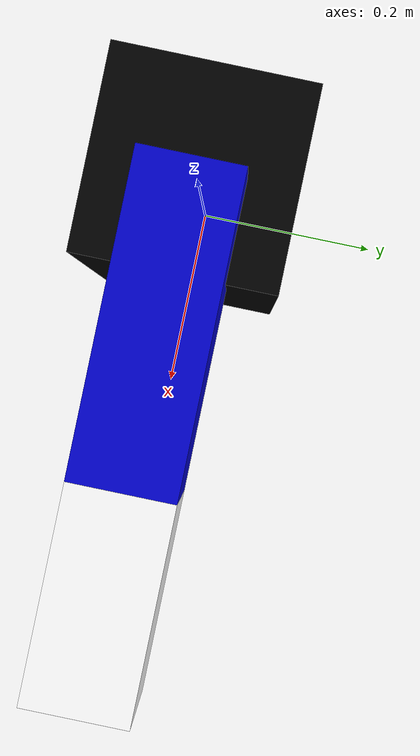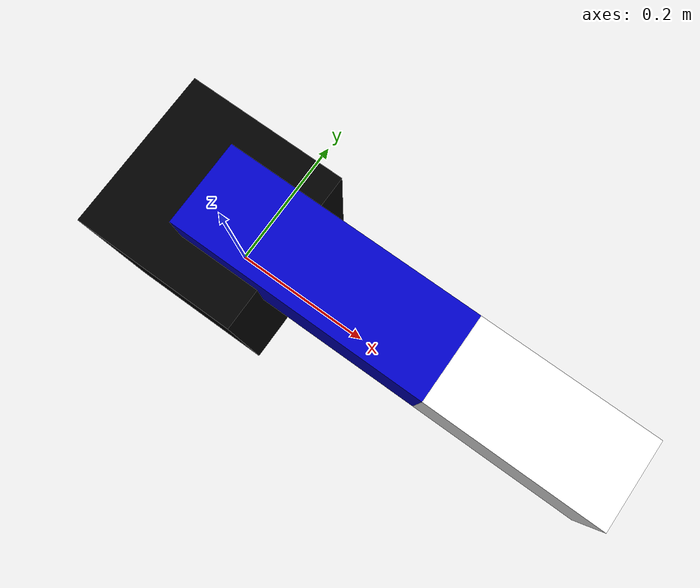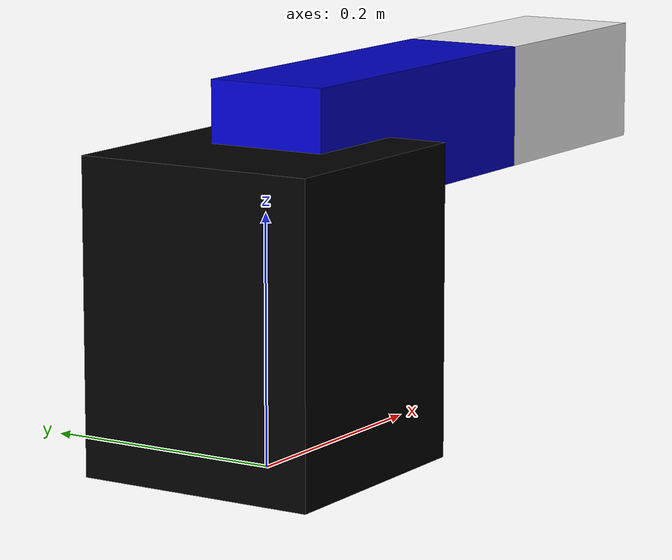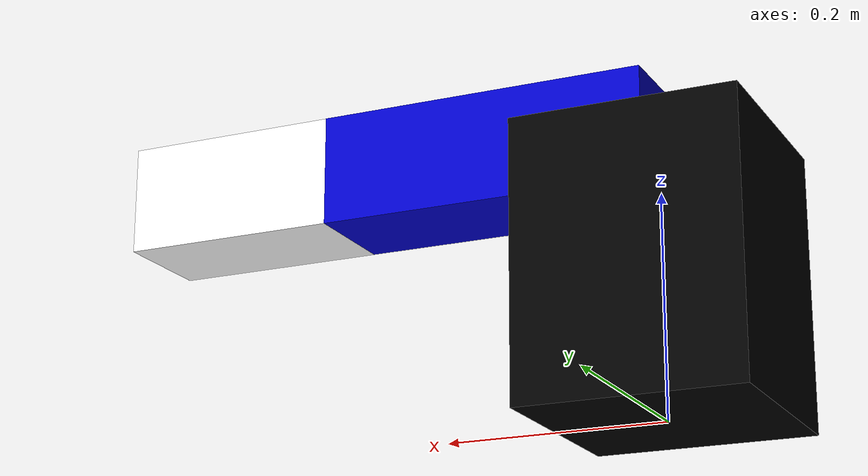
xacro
<?xml version="1.0"?>
<robot name="PatoBombelSon" xmlns:xacro="http://ros.org/wiki/xacro">

	<!-- Wartości parametrow -->
	<xacro:property name="a2" value="0.3" />
	<xacro:property name="base_size" value="0.25" />
	<xacro:property name="gripper_size" value="0.2" />

	<!-- Stworzenie kolorow pokryc elementow -->
	<material name="blue">
		<color rgba="0 0 0.8 1"/>
	</material>

	<material name="black">
		<color rgba="0 0 0 1"/>
	</material>

	<material name="white">
		<color rgba="1 1 1 1"/>
	</material>

	<!-- Makro segmentMacro tworzace link - element robota -->
	<xacro:macro name="segmentMacro" params="name color xyz size">
		<link name="${name}">
			<visual>
				<geometry>
					<box size="${size}"/>
				</geometry>
				<material name="${color}"/>
				<origin xyz="${xyz}"/>
			</visual>
		</link>
	</xacro:macro>

	<!-- Makro jointRevolute tworzące joint - tworzace ruchome polaczenie pomiedzy elementami robota -->
	<xacro:macro name="jointRevolute" params="parent child rpy xyz  axis_xyz limit_low limit_up">
		<joint name="${parent}_to_${child}_joint_continuous" type="revolute">
			<limit effort="1000.0" lower="${limit_low}" upper="${limit_up}" velocity="0.5"/>
			<axis  xyz="${axis_xyz}"/>
			<parent link="${parent}"/>
			<child link="${child}"/>
			<origin rpy="${rpy}" xyz="${xyz}"/>
		</joint>
	</xacro:macro>

	<!-- Wykorzystanie makra segmentMacro do stworzenia elementow robota -->
	<xacro:segmentMacro name="base_link" color="black" xyz="0 0 ${base_size/2}"     size="0.2 0.2 ${base_size}"/>
	<xacro:segmentMacro name="segment_1" color="white" xyz="0 0 ${0}"               size="0 0 0"/>
	<xacro:segmentMacro name="segment_2" color="blue"  xyz="${a2/2} 0 0 "           size="${a2} 0.1 0.1 "/>
	<xacro:segmentMacro name="gripper"   color="white" xyz="${gripper_size/2} 0 0 " size="${gripper_size} 0.1 0.1 "/>

	<!-- Wykorzystanie makra jointRevolute do stworzenia polaczen pomiedzy elementami robota -->
	<xacro:jointRevolute parent="base_link" child="segment_1" rpy="0 0 0"        xyz="0 0 ${base_size}"
		axis_xyz="0 0 1" limit_low="-3.14" limit_up="3.14"/>
	<xacro:jointRevolute parent="segment_1" child="segment_2" rpy="${-pi/2} 0 0" xyz="0 0 0"
		axis_xyz="0 0 1" limit_low="-1.54" limit_up="0"/>
	<xacro:jointRevolute parent="segment_2" child="gripper"   rpy="0 0 0"        xyz="${a2} 0 0"
		axis_xyz="0 0 1" limit_low="0" limit_up="1.54"/>
</robot>
